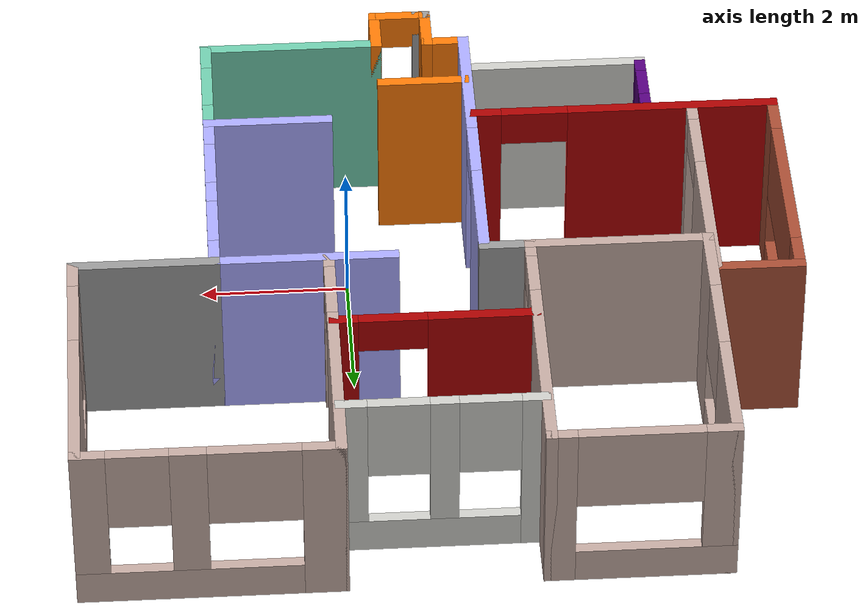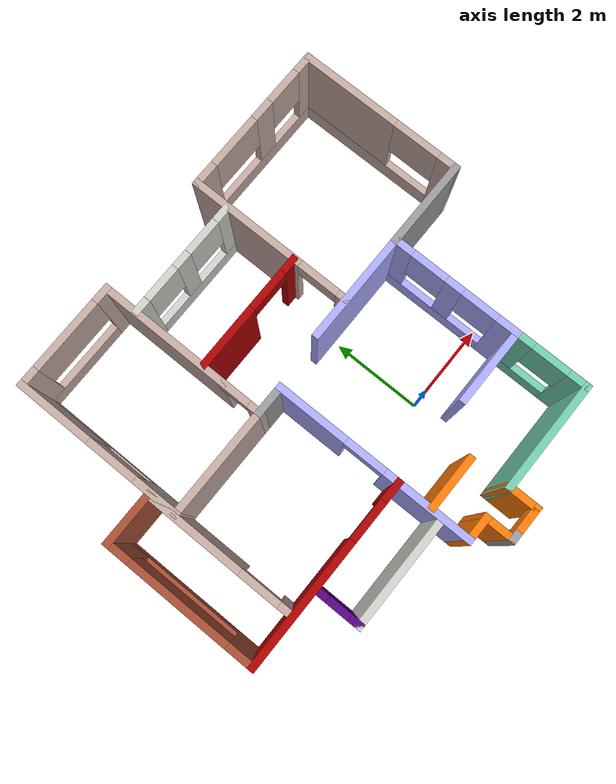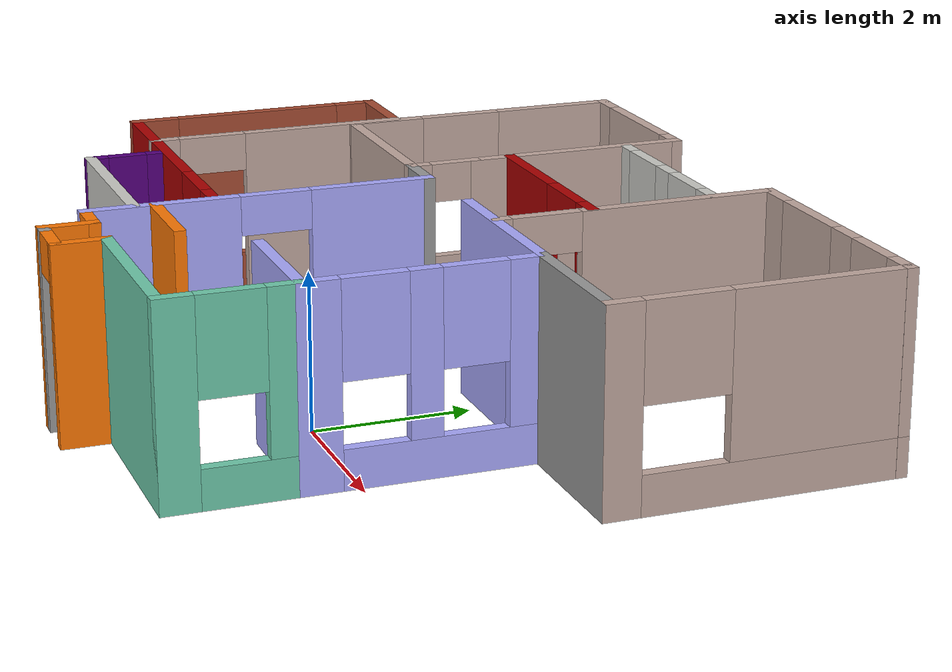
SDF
<?xml version='1.0'?>
<sdf version='1.6'>
  <model name='homeGoChaseIt'>
    <pose frame=''>-1.07958 1.48988 0 0 -0 0</pose>
    <link name='Wall_0'>
      <pose frame=''>0.249581 -4.33988 0 0 -0 0</pose>
      <visual name='Wall_0_Visual_0'>
        <pose frame=''>-0.348103 0 1.25 0 -0 0</pose>
        <geometry>
          <box>
            <size>0.053794 0.15 2.5</size>
          </box>
        </geometry>
        <material>
          <script>
            <uri>file://media/materials/scripts/gazebo.material</uri>
            <name>Gazebo/Grey</name>
          </script>
          <ambient>0.996078 0.47451 0.0196078 1</ambient>
        </material>
        <meta>
          <layer>0</layer>
        </meta>
      </visual>
      <collision name='Wall_0_Collision_0'>
        <geometry>
          <box>
            <size>0.053794 0.15 2.5</size>
          </box>
        </geometry>
        <pose frame=''>-0.348103 0 1.25 0 -0 0</pose>
      </collision>
      <visual name='Wall_0_Visual_1'>
        <pose frame=''>0.326897 0 1.25 0 -0 0</pose>
        <geometry>
          <box>
            <size>0.096206 0.15 2.5</size>
          </box>
        </geometry>
        <material>
          <script>
            <uri>file://media/materials/scripts/gazebo.material</uri>
            <name>Gazebo/Grey</name>
          </script>
          <ambient>0.996078 0.47451 0.0196078 1</ambient>
        </material>
        <meta>
          <layer>0</layer>
        </meta>
      </visual>
      <collision name='Wall_0_Collision_1'>
        <geometry>
          <box>
            <size>0.096206 0.15 2.5</size>
          </box>
        </geometry>
        <pose frame=''>0.326897 0 1.25 0 -0 0</pose>
      </collision>
      <visual name='Wall_0_Visual_2'>
        <pose frame=''>-0.021206 0 2.25 0 -0 0</pose>
        <geometry>
          <box>
            <size>0.6 0.15 0.5</size>
          </box>
        </geometry>
        <material>
          <script>
            <uri>file://media/materials/scripts/gazebo.material</uri>
            <name>Gazebo/Grey</name>
          </script>
          <ambient>0.996078 0.47451 0.0196078 1</ambient>
        </material>
        <meta>
          <layer>0</layer>
        </meta>
      </visual>
      <collision name='Wall_0_Collision_2'>
        <geometry>
          <box>
            <size>0.6 0.15 0.5</size>
          </box>
        </geometry>
        <pose frame=''>-0.021206 0 2.25 0 -0 0</pose>
      </collision>
    </link>
    <link name='Wall_1'>
      <collision name='Wall_1_Collision'>
        <geometry>
          <box>
            <size>0.75 0.15 2.5</size>
          </box>
        </geometry>
        <pose frame=''>0 0 1.25 0 -0 0</pose>
      </collision>
      <visual name='Wall_1_Visual'>
        <pose frame=''>0 0 1.25 0 -0 0</pose>
        <geometry>
          <box>
            <size>0.75 0.15 2.5</size>
          </box>
        </geometry>
        <material>
          <script>
            <uri>file://media/materials/scripts/gazebo.material</uri>
            <name>Gazebo/Grey</name>
          </script>
          <ambient>0.996078 0.47451 0.0196078 1</ambient>
        </material>
        <meta>
          <layer>0</layer>
        </meta>
      </visual>
      <pose frame=''>0.549581 -4.03988 0 0 -0 1.5708</pose>
    </link>
    <link name='Wall_12'>
      <pose frame=''>-0.650419 -1.56488 0 0 -0 1.5708</pose>
      <visual name='Wall_12_Visual_0'>
        <pose frame=''>-1.2585 0 1.25 0 -0 0</pose>
        <geometry>
          <box>
            <size>1.983 0.15 2.5</size>
          </box>
        </geometry>
        <material>
          <script>
            <uri>file://media/materials/scripts/gazebo.material</uri>
            <name>Gazebo/Grey</name>
          </script>
          <ambient>0.666667 0.666667 1 1</ambient>
        </material>
        <meta>
          <layer>0</layer>
        </meta>
      </visual>
      <collision name='Wall_12_Collision_0'>
        <geometry>
          <box>
            <size>1.983 0.15 2.5</size>
          </box>
        </geometry>
        <pose frame=''>-1.2585 0 1.25 0 -0 0</pose>
      </collision>
      <visual name='Wall_12_Visual_1'>
        <pose frame=''>1.4415 0 1.25 0 -0 0</pose>
        <geometry>
          <box>
            <size>1.617 0.15 2.5</size>
          </box>
        </geometry>
        <material>
          <script>
            <uri>file://media/materials/scripts/gazebo.material</uri>
            <name>Gazebo/Grey</name>
          </script>
          <ambient>0.666667 0.666667 1 1</ambient>
        </material>
        <meta>
          <layer>0</layer>
        </meta>
      </visual>
      <collision name='Wall_12_Collision_1'>
        <geometry>
          <box>
            <size>1.617 0.15 2.5</size>
          </box>
        </geometry>
        <pose frame=''>1.4415 0 1.25 0 -0 0</pose>
      </collision>
      <visual name='Wall_12_Visual_2'>
        <pose frame=''>0.183002 0 2.25 0 -0 0</pose>
        <geometry>
          <box>
            <size>0.9 0.15 0.5</size>
          </box>
        </geometry>
        <material>
          <script>
            <uri>file://media/materials/scripts/gazebo.material</uri>
            <name>Gazebo/Grey</name>
          </script>
          <ambient>0.666667 0.666667 1 1</ambient>
        </material>
        <meta>
          <layer>0</layer>
        </meta>
      </visual>
      <collision name='Wall_12_Collision_2'>
        <geometry>
          <box>
            <size>0.9 0.15 0.5</size>
          </box>
        </geometry>
        <pose frame=''>0.183002 0 2.25 0 -0 0</pose>
      </collision>
    </link>
    <link name='Wall_16'>
      <collision name='Wall_16_Collision'>
        <geometry>
          <box>
            <size>0.75 0.15 2.5</size>
          </box>
        </geometry>
        <pose frame=''>0 0 1.25 0 -0 0</pose>
      </collision>
      <visual name='Wall_16_Visual'>
        <pose frame=''>0 0 1.25 0 -0 0</pose>
        <geometry>
          <box>
            <size>0.75 0.15 2.5</size>
          </box>
        </geometry>
        <material>
          <script>
            <uri>file://media/materials/scripts/gazebo.material</uri>
            <name>Gazebo/Grey</name>
          </script>
          <ambient>1 1 1 1</ambient>
        </material>
        <meta>
          <layer>0</layer>
        </meta>
      </visual>
      <pose frame=''>-0.950419 0.610124 0 0 -0 3.14159</pose>
    </link>
    <link name='Wall_17'>
      <pose frame=''>-1.25042 1.03512 0 0 -0 1.5708</pose>
      <visual name='Wall_17_Visual_0'>
        <pose frame=''>-0.337999 0 1.25 0 -0 0</pose>
        <geometry>
          <box>
            <size>0.324002 0.15 2.5</size>
          </box>
        </geometry>
        <material>
          <script>
            <uri>file://media/materials/scripts/gazebo.material</uri>
            <name>Gazebo/Grey</name>
          </script>
          <ambient>0.760784 0.662745 0.627451 1</ambient>
        </material>
        <meta>
          <layer>0</layer>
        </meta>
      </visual>
      <collision name='Wall_17_Collision_0'>
        <geometry>
          <box>
            <size>0.324002 0.15 2.5</size>
          </box>
        </geometry>
        <pose frame=''>-0.337999 0 1.25 0 -0 0</pose>
      </collision>
      <visual name='Wall_17_Visual_1'>
        <pose frame=''>0.162001 0 2.25 0 -0 0</pose>
        <geometry>
          <box>
            <size>0.675998 0.15 0.5</size>
          </box>
        </geometry>
        <material>
          <script>
            <uri>file://media/materials/scripts/gazebo.material</uri>
            <name>Gazebo/Grey</name>
          </script>
          <ambient>0.760784 0.662745 0.627451 1</ambient>
        </material>
        <meta>
          <layer>0</layer>
        </meta>
      </visual>
      <collision name='Wall_17_Collision_1'>
        <geometry>
          <box>
            <size>0.675998 0.15 0.5</size>
          </box>
        </geometry>
        <pose frame=''>0.162001 0 2.25 0 -0 0</pose>
      </collision>
    </link>
    <link name='Wall_2'>
      <collision name='Wall_2_Collision'>
        <geometry>
          <box>
            <size>2.5 0.15 2.5</size>
          </box>
        </geometry>
        <pose frame=''>0 0 1.25 0 -0 0</pose>
      </collision>
      <visual name='Wall_2_Visual'>
        <pose frame=''>0 0 1.25 0 -0 0</pose>
        <geometry>
          <box>
            <size>2.5 0.15 2.5</size>
          </box>
        </geometry>
        <material>
          <script>
            <uri>file://media/materials/scripts/gazebo.material</uri>
            <name>Gazebo/Grey</name>
          </script>
          <ambient>0.435294 0.796078 0.67451 1</ambient>
        </material>
        <meta>
          <layer>0</layer>
        </meta>
      </visual>
      <pose frame=''>1.72458 -3.73988 0 0 -0 0</pose>
    </link>
    <link name='Wall_21'>
      <collision name='Wall_21_Collision'>
        <geometry>
          <box>
            <size>3 0.15 2.5</size>
          </box>
        </geometry>
        <pose frame=''>0 0 1.25 0 -0 0</pose>
      </collision>
      <visual name='Wall_21_Visual'>
        <pose frame=''>0 0 1.25 0 -0 0</pose>
        <geometry>
          <box>
            <size>3 0.15 2.5</size>
          </box>
        </geometry>
        <material>
          <script>
            <uri>file://media/materials/scripts/gazebo.material</uri>
            <name>Gazebo/Grey</name>
          </script>
          <ambient>0.760784 0.662745 0.627451 1</ambient>
        </material>
        <meta>
          <layer>0</layer>
        </meta>
      </visual>
      <pose frame=''>-1.25042 2.88512 0 0 -0 1.5708</pose>
    </link>
    <link name='Wall_22'>
      <pose frame=''>-2.42542 4.31012 0 0 -0 3.14159</pose>
      <visual name='Wall_22_Visual_0'>
        <pose frame=''>-1.0479 0 1.25 0 -0 0</pose>
        <geometry>
          <box>
            <size>0.404205 0.15 2.5</size>
          </box>
        </geometry>
        <material>
          <script>
            <uri>file://media/materials/scripts/gazebo.material</uri>
            <name>Gazebo/Grey</name>
          </script>
          <ambient>0.760784 0.662745 0.627451 1</ambient>
        </material>
        <meta>
          <layer>0</layer>
        </meta>
      </visual>
      <collision name='Wall_22_Collision_0'>
        <geometry>
          <box>
            <size>0.404205 0.15 2.5</size>
          </box>
        </geometry>
        <pose frame=''>-1.0479 0 1.25 0 -0 0</pose>
      </collision>
      <visual name='Wall_22_Visual_1'>
        <pose frame=''>0.202103 0 0.25 0 -0 0</pose>
        <geometry>
          <box>
            <size>2.09579 0.15 0.5</size>
          </box>
        </geometry>
        <material>
          <script>
            <uri>file://media/materials/scripts/gazebo.material</uri>
            <name>Gazebo/Grey</name>
          </script>
          <ambient>0.760784 0.662745 0.627451 1</ambient>
        </material>
        <meta>
          <layer>0</layer>
        </meta>
      </visual>
      <collision name='Wall_22_Collision_1'>
        <geometry>
          <box>
            <size>2.09579 0.15 0.5</size>
          </box>
        </geometry>
        <pose frame=''>0.202103 0 0.25 0 -0 0</pose>
      </collision>
      <visual name='Wall_22_Visual_2'>
        <pose frame=''>1.0161 0 1.5 0 -0 0</pose>
        <geometry>
          <box>
            <size>0.467795 0.15 2</size>
          </box>
        </geometry>
        <material>
          <script>
            <uri>file://media/materials/scripts/gazebo.material</uri>
            <name>Gazebo/Grey</name>
          </script>
          <ambient>0.760784 0.662745 0.627451 1</ambient>
        </material>
        <meta>
          <layer>0</layer>
        </meta>
      </visual>
      <collision name='Wall_22_Collision_2'>
        <geometry>
          <box>
            <size>0.467795 0.15 2</size>
          </box>
        </geometry>
        <pose frame=''>1.0161 0 1.5 0 -0 0</pose>
      </collision>
      <visual name='Wall_22_Visual_3'>
        <pose frame=''>-0.031795 0 1.9 0 -0 0</pose>
        <geometry>
          <box>
            <size>1.628 0.15 1.2</size>
          </box>
        </geometry>
        <material>
          <script>
            <uri>file://media/materials/scripts/gazebo.material</uri>
            <name>Gazebo/Grey</name>
          </script>
          <ambient>0.760784 0.662745 0.627451 1</ambient>
        </material>
        <meta>
          <layer>0</layer>
        </meta>
      </visual>
      <collision name='Wall_22_Collision_3'>
        <geometry>
          <box>
            <size>1.628 0.15 1.2</size>
          </box>
        </geometry>
        <pose frame=''>-0.031795 0 1.9 0 -0 0</pose>
      </collision>
    </link>
    <link name='Wall_26'>
      <pose frame=''>0.079375 3.58613 0 0 -0 0</pose>
      <visual name='Wall_26_Visual_0'>
        <pose frame=''>-1.1925 0 1.25 0 -0 0</pose>
        <geometry>
          <box>
            <size>0.365 0.15 2.5</size>
          </box>
        </geometry>
        <material>
          <script>
            <uri>file://media/materials/scripts/gazebo.material</uri>
            <name>Gazebo/CeilingTiled</name>
          </script>
          <ambient>1 1 1 1</ambient>
        </material>
        <meta>
          <layer>0</layer>
        </meta>
      </visual>
      <collision name='Wall_26_Collision_0'>
        <geometry>
          <box>
            <size>0.365 0.15 2.5</size>
          </box>
        </geometry>
        <pose frame=''>-1.1925 0 1.25 0 -0 0</pose>
      </collision>
      <visual name='Wall_26_Visual_1'>
        <pose frame=''>0.1825 0 0.25 0 -0 0</pose>
        <geometry>
          <box>
            <size>2.385 0.15 0.5</size>
          </box>
        </geometry>
        <material>
          <script>
            <uri>file://media/materials/scripts/gazebo.material</uri>
            <name>Gazebo/CeilingTiled</name>
          </script>
          <ambient>1 1 1 1</ambient>
        </material>
        <meta>
          <layer>0</layer>
        </meta>
      </visual>
      <collision name='Wall_26_Collision_1'>
        <geometry>
          <box>
            <size>2.385 0.15 0.5</size>
          </box>
        </geometry>
        <pose frame=''>0.1825 0 0.25 0 -0 0</pose>
      </collision>
      <visual name='Wall_26_Visual_2'>
        <pose frame=''>-0.0235 0 1.5 0 -0 0</pose>
        <geometry>
          <box>
            <size>0.373 0.15 2</size>
          </box>
        </geometry>
        <material>
          <script>
            <uri>file://media/materials/scripts/gazebo.material</uri>
            <name>Gazebo/CeilingTiled</name>
          </script>
          <ambient>1 1 1 1</ambient>
        </material>
        <meta>
          <layer>0</layer>
        </meta>
      </visual>
      <collision name='Wall_26_Collision_2'>
        <geometry>
          <box>
            <size>0.373 0.15 2</size>
          </box>
        </geometry>
        <pose frame=''>-0.0235 0 1.5 0 -0 0</pose>
      </collision>
      <visual name='Wall_26_Visual_3'>
        <pose frame=''>1.169 0 1.5 0 -0 0</pose>
        <geometry>
          <box>
            <size>0.412 0.15 2</size>
          </box>
        </geometry>
        <material>
          <script>
            <uri>file://media/materials/scripts/gazebo.material</uri>
            <name>Gazebo/CeilingTiled</name>
          </script>
          <ambient>1 1 1 1</ambient>
        </material>
        <meta>
          <layer>0</layer>
        </meta>
      </visual>
      <collision name='Wall_26_Collision_3'>
        <geometry>
          <box>
            <size>0.412 0.15 2</size>
          </box>
        </geometry>
        <pose frame=''>1.169 0 1.5 0 -0 0</pose>
      </collision>
      <visual name='Wall_26_Visual_4'>
        <pose frame=''>-0.61 0 1.9 0 -0 0</pose>
        <geometry>
          <box>
            <size>0.8 0.15 1.2</size>
          </box>
        </geometry>
        <material>
          <script>
            <uri>file://media/materials/scripts/gazebo.material</uri>
            <name>Gazebo/CeilingTiled</name>
          </script>
          <ambient>1 1 1 1</ambient>
        </material>
        <meta>
          <layer>0</layer>
        </meta>
      </visual>
      <collision name='Wall_26_Collision_4'>
        <geometry>
          <box>
            <size>0.8 0.15 1.2</size>
          </box>
        </geometry>
        <pose frame=''>-0.61 0 1.9 0 -0 0</pose>
      </collision>
      <visual name='Wall_26_Visual_5'>
        <pose frame=''>0.563 0 1.9 0 -0 0</pose>
        <geometry>
          <box>
            <size>0.8 0.15 1.2</size>
          </box>
        </geometry>
        <material>
          <script>
            <uri>file://media/materials/scripts/gazebo.material</uri>
            <name>Gazebo/CeilingTiled</name>
          </script>
          <ambient>1 1 1 1</ambient>
        </material>
        <meta>
          <layer>0</layer>
        </meta>
      </visual>
      <collision name='Wall_26_Collision_5'>
        <geometry>
          <box>
            <size>0.8 0.15 1.2</size>
          </box>
        </geometry>
        <pose frame=''>0.563 0 1.9 0 -0 0</pose>
      </collision>
    </link>
    <link name='Wall_3'>
      <pose frame=''>2.89958 -2.93988 0 0 -0 1.5708</pose>
      <visual name='Wall_3_Visual_0'>
        <pose frame=''>-0.634749 0 1.25 0 -0 0</pose>
        <geometry>
          <box>
            <size>0.480502 0.15 2.5</size>
          </box>
        </geometry>
        <material>
          <script>
            <uri>file://media/materials/scripts/gazebo.material</uri>
            <name>Gazebo/Grey</name>
          </script>
          <ambient>0.435294 0.796078 0.67451 1</ambient>
        </material>
        <meta>
          <layer>0</layer>
        </meta>
      </visual>
      <collision name='Wall_3_Collision_0'>
        <geometry>
          <box>
            <size>0.480502 0.15 2.5</size>
          </box>
        </geometry>
        <pose frame=''>-0.634749 0 1.25 0 -0 0</pose>
      </collision>
      <visual name='Wall_3_Visual_1'>
        <pose frame=''>0.240251 0 0.25 0 -0 0</pose>
        <geometry>
          <box>
            <size>1.2695 0.15 0.5</size>
          </box>
        </geometry>
        <material>
          <script>
            <uri>file://media/materials/scripts/gazebo.material</uri>
            <name>Gazebo/Grey</name>
          </script>
          <ambient>0.435294 0.796078 0.67451 1</ambient>
        </material>
        <meta>
          <layer>0</layer>
        </meta>
      </visual>
      <collision name='Wall_3_Collision_1'>
        <geometry>
          <box>
            <size>1.2695 0.15 0.5</size>
          </box>
        </geometry>
        <pose frame=''>0.240251 0 0.25 0 -0 0</pose>
      </collision>
      <visual name='Wall_3_Visual_2'>
        <pose frame=''>0.640251 0 1.5 0 -0 0</pose>
        <geometry>
          <box>
            <size>0.469498 0.15 2</size>
          </box>
        </geometry>
        <material>
          <script>
            <uri>file://media/materials/scripts/gazebo.material</uri>
            <name>Gazebo/Grey</name>
          </script>
          <ambient>0.435294 0.796078 0.67451 1</ambient>
        </material>
        <meta>
          <layer>0</layer>
        </meta>
      </visual>
      <collision name='Wall_3_Collision_2'>
        <geometry>
          <box>
            <size>0.469498 0.15 2</size>
          </box>
        </geometry>
        <pose frame=''>0.640251 0 1.5 0 -0 0</pose>
      </collision>
      <visual name='Wall_3_Visual_3'>
        <pose frame=''>0.005502 0 1.9 0 -0 0</pose>
        <geometry>
          <box>
            <size>0.8 0.15 1.2</size>
          </box>
        </geometry>
        <material>
          <script>
            <uri>file://media/materials/scripts/gazebo.material</uri>
            <name>Gazebo/Grey</name>
          </script>
          <ambient>0.435294 0.796078 0.67451 1</ambient>
        </material>
        <meta>
          <layer>0</layer>
        </meta>
      </visual>
      <collision name='Wall_3_Collision_3'>
        <geometry>
          <box>
            <size>0.8 0.15 1.2</size>
          </box>
        </geometry>
        <pose frame=''>0.005502 0 1.9 0 -0 0</pose>
      </collision>
    </link>
    <link name='Wall_36'>
      <collision name='Wall_36_Collision'>
        <geometry>
          <box>
            <size>0.25 0.15 2.5</size>
          </box>
        </geometry>
        <pose frame=''>0 0 1.25 0 -0 0</pose>
      </collision>
      <visual name='Wall_36_Visual'>
        <pose frame=''>0 0 1.25 0 -0 0</pose>
        <geometry>
          <box>
            <size>0.25 0.15 2.5</size>
          </box>
        </geometry>
        <material>
          <script>
            <uri>file://media/materials/scripts/gazebo.material</uri>
            <name>Gazebo/Grey</name>
          </script>
          <ambient>1 1 1 1</ambient>
        </material>
        <meta>
          <layer>0</layer>
        </meta>
      </visual>
      <pose frame=''>-0.100419 -4.33988 0 0 -0 3.14159</pose>
    </link>
    <link name='Wall_37'>
      <collision name='Wall_37_Collision'>
        <geometry>
          <box>
            <size>0.75 0.15 2.5</size>
          </box>
        </geometry>
        <pose frame=''>0 0 1.25 0 -0 0</pose>
      </collision>
      <visual name='Wall_37_Visual'>
        <pose frame=''>0 0 1.25 0 -0 0</pose>
        <geometry>
          <box>
            <size>0.75 0.15 2.5</size>
          </box>
        </geometry>
        <material>
          <script>
            <uri>file://media/materials/scripts/gazebo.material</uri>
            <name>Gazebo/Grey</name>
          </script>
          <ambient>0.996078 0.47451 0.0196078 1</ambient>
        </material>
        <meta>
          <layer>0</layer>
        </meta>
      </visual>
      <pose frame=''>-0.150419 -4.03988 0 0 -0 1.5708</pose>
    </link>
    <link name='Wall_38'>
      <collision name='Wall_38_Collision'>
        <geometry>
          <box>
            <size>0.65 0.15 2.5</size>
          </box>
        </geometry>
        <pose frame=''>0 0 1.25 0 -0 0</pose>
      </collision>
      <visual name='Wall_38_Visual'>
        <pose frame=''>0 0 1.25 0 -0 0</pose>
        <geometry>
          <box>
            <size>0.65 0.15 2.5</size>
          </box>
        </geometry>
        <material>
          <script>
            <uri>file://media/materials/scripts/gazebo.material</uri>
            <name>Gazebo/Grey</name>
          </script>
          <ambient>0.996078 0.47451 0.0196078 1</ambient>
        </material>
        <meta>
          <layer>0</layer>
        </meta>
      </visual>
      <pose frame=''>-0.400419 -3.73988 0 0 -0 3.14159</pose>
    </link>
    <link name='Wall_40'>
      <collision name='Wall_40_Collision'>
        <geometry>
          <box>
            <size>2.5 0.15 2.5</size>
          </box>
        </geometry>
        <pose frame=''>0 0 1.25 0 -0 0</pose>
      </collision>
      <visual name='Wall_40_Visual'>
        <pose frame=''>0 0 1.25 0 -0 0</pose>
        <geometry>
          <box>
            <size>2.5 0.15 2.5</size>
          </box>
        </geometry>
        <material>
          <script>
            <uri>file://media/materials/scripts/gazebo.material</uri>
            <name>Gazebo/Grey</name>
          </script>
          <ambient>0.760784 0.662745 0.627451 1</ambient>
        </material>
        <meta>
          <layer>0</layer>
        </meta>
      </visual>
      <pose frame=''>-2.42542 0.610124 0 0 -0 3.14159</pose>
    </link>
    <link name='Wall_41'>
      <pose frame=''>-3.60042 2.46012 0 0 -0 1.5708</pose>
      <visual name='Wall_41_Visual_0'>
        <pose frame=''>-1.40162 0 1.25 0 -0 0</pose>
        <geometry>
          <box>
            <size>1.04675 0.15 2.5</size>
          </box>
        </geometry>
        <material>
          <script>
            <uri>file://media/materials/scripts/gazebo.material</uri>
            <name>Gazebo/Grey</name>
          </script>
          <ambient>0.760784 0.662745 0.627451 1</ambient>
        </material>
        <meta>
          <layer>0</layer>
        </meta>
      </visual>
      <collision name='Wall_41_Collision_0'>
        <geometry>
          <box>
            <size>1.04675 0.15 2.5</size>
          </box>
        </geometry>
        <pose frame=''>-1.40162 0 1.25 0 -0 0</pose>
      </collision>
      <visual name='Wall_41_Visual_1'>
        <pose frame=''>0.523376 0 0.25 0 -0 0</pose>
        <geometry>
          <box>
            <size>2.80325 0.15 0.5</size>
          </box>
        </geometry>
        <material>
          <script>
            <uri>file://media/materials/scripts/gazebo.material</uri>
            <name>Gazebo/Grey</name>
          </script>
          <ambient>0.760784 0.662745 0.627451 1</ambient>
        </material>
        <meta>
          <layer>0</layer>
        </meta>
      </visual>
      <collision name='Wall_41_Collision_1'>
        <geometry>
          <box>
            <size>2.80325 0.15 0.5</size>
          </box>
        </geometry>
        <pose frame=''>0.523376 0 0.25 0 -0 0</pose>
      </collision>
      <visual name='Wall_41_Visual_2'>
        <pose frame=''>1.07863 0 1.5 0 -0 0</pose>
        <geometry>
          <box>
            <size>1.69275 0.15 2</size>
          </box>
        </geometry>
        <material>
          <script>
            <uri>file://media/materials/scripts/gazebo.material</uri>
            <name>Gazebo/Grey</name>
          </script>
          <ambient>0.760784 0.662745 0.627451 1</ambient>
        </material>
        <meta>
          <layer>0</layer>
        </meta>
      </visual>
      <collision name='Wall_41_Collision_2'>
        <geometry>
          <box>
            <size>1.69275 0.15 2</size>
          </box>
        </geometry>
        <pose frame=''>1.07863 0 1.5 0 -0 0</pose>
      </collision>
      <visual name='Wall_41_Visual_3'>
        <pose frame=''>-0.322998 0 1.9 0 -0 0</pose>
        <geometry>
          <box>
            <size>1.1105 0.15 1.2</size>
          </box>
        </geometry>
        <material>
          <script>
            <uri>file://media/materials/scripts/gazebo.material</uri>
            <name>Gazebo/Grey</name>
          </script>
          <ambient>0.760784 0.662745 0.627451 1</ambient>
        </material>
        <meta>
          <layer>0</layer>
        </meta>
      </visual>
      <collision name='Wall_41_Collision_3'>
        <geometry>
          <box>
            <size>1.1105 0.15 1.2</size>
          </box>
        </geometry>
        <pose frame=''>-0.322998 0 1.9 0 -0 0</pose>
      </collision>
    </link>
    <link name='Wall_43'>
      <collision name='Wall_43_Collision'>
        <geometry>
          <box>
            <size>2 0.15 2.5</size>
          </box>
        </geometry>
        <pose frame=''>0 0 1.25 0 -0 0</pose>
      </collision>
      <visual name='Wall_43_Visual'>
        <pose frame=''>0 0 1.25 0 -0 0</pose>
        <geometry>
          <box>
            <size>2 0.15 2.5</size>
          </box>
        </geometry>
        <material>
          <script>
            <uri>file://media/materials/scripts/gazebo.material</uri>
            <name>Gazebo/Grey</name>
          </script>
          <ambient>1 1 1 1</ambient>
        </material>
        <meta>
          <layer>0</layer>
        </meta>
      </visual>
      <pose frame=''>3.82458 0.710124 0 0 -0 0</pose>
    </link>
    <link name='Wall_44'>
      <pose frame=''>4.74958 2.51012 0 0 -0 1.5708</pose>
      <visual name='Wall_44_Visual_0'>
        <pose frame=''>-1.64312 0 1.25 0 -0 0</pose>
        <geometry>
          <box>
            <size>0.463752 0.15 2.5</size>
          </box>
        </geometry>
        <material>
          <script>
            <uri>file://media/materials/scripts/gazebo.material</uri>
            <name>Gazebo/Grey</name>
          </script>
          <ambient>0.760784 0.662745 0.627451 1</ambient>
        </material>
        <meta>
          <layer>0</layer>
        </meta>
      </visual>
      <collision name='Wall_44_Collision_0'>
        <geometry>
          <box>
            <size>0.463752 0.15 2.5</size>
          </box>
        </geometry>
        <pose frame=''>-1.64312 0 1.25 0 -0 0</pose>
      </collision>
      <visual name='Wall_44_Visual_1'>
        <pose frame=''>0.231876 0 0.25 0 -0 0</pose>
        <geometry>
          <box>
            <size>3.28625 0.15 0.5</size>
          </box>
        </geometry>
        <material>
          <script>
            <uri>file://media/materials/scripts/gazebo.material</uri>
            <name>Gazebo/Grey</name>
          </script>
          <ambient>0.760784 0.662745 0.627451 1</ambient>
        </material>
        <meta>
          <layer>0</layer>
        </meta>
      </visual>
      <collision name='Wall_44_Collision_1'>
        <geometry>
          <box>
            <size>3.28625 0.15 0.5</size>
          </box>
        </geometry>
        <pose frame=''>0.231876 0 0.25 0 -0 0</pose>
      </collision>
      <visual name='Wall_44_Visual_2'>
        <pose frame=''>0.761251 0 1.5 0 -0 0</pose>
        <geometry>
          <box>
            <size>2.2275 0.15 2</size>
          </box>
        </geometry>
        <material>
          <script>
            <uri>file://media/materials/scripts/gazebo.material</uri>
            <name>Gazebo/Grey</name>
          </script>
          <ambient>0.760784 0.662745 0.627451 1</ambient>
        </material>
        <meta>
          <layer>0</layer>
        </meta>
      </visual>
      <collision name='Wall_44_Collision_2'>
        <geometry>
          <box>
            <size>2.2275 0.15 2</size>
          </box>
        </geometry>
        <pose frame=''>0.761251 0 1.5 0 -0 0</pose>
      </collision>
      <visual name='Wall_44_Visual_3'>
        <pose frame=''>-0.881873 0 1.9 0 -0 0</pose>
        <geometry>
          <box>
            <size>1.05875 0.15 1.2</size>
          </box>
        </geometry>
        <material>
          <script>
            <uri>file://media/materials/scripts/gazebo.material</uri>
            <name>Gazebo/Grey</name>
          </script>
          <ambient>0.760784 0.662745 0.627451 1</ambient>
        </material>
        <meta>
          <layer>0</layer>
        </meta>
      </visual>
      <collision name='Wall_44_Collision_3'>
        <geometry>
          <box>
            <size>1.05875 0.15 1.2</size>
          </box>
        </geometry>
        <pose frame=''>-0.881873 0 1.9 0 -0 0</pose>
      </collision>
    </link>
    <link name='Wall_46'>
      <pose frame=''>1.40138 2.53988 0 0 -0 1.5708</pose>
      <visual name='Wall_46_Visual_0'>
        <pose frame=''>-1.752 0 1.25 0 -0 0</pose>
        <geometry>
          <box>
            <size>0.246 0.15 2.5</size>
          </box>
        </geometry>
        <material>
          <script>
            <uri>file://media/materials/scripts/gazebo.material</uri>
            <name>Gazebo/Grey</name>
          </script>
          <ambient>0.760784 0.662745 0.627451 1</ambient>
        </material>
        <meta>
          <layer>0</layer>
        </meta>
      </visual>
      <collision name='Wall_46_Collision_0'>
        <geometry>
          <box>
            <size>0.246 0.15 2.5</size>
          </box>
        </geometry>
        <pose frame=''>-1.752 0 1.25 0 -0 0</pose>
      </collision>
      <visual name='Wall_46_Visual_1'>
        <pose frame=''>0.573 0 1.25 0 -0 0</pose>
        <geometry>
          <box>
            <size>2.604 0.15 2.5</size>
          </box>
        </geometry>
        <material>
          <script>
            <uri>file://media/materials/scripts/gazebo.material</uri>
            <name>Gazebo/Grey</name>
          </script>
          <ambient>0.760784 0.662745 0.627451 1</ambient>
        </material>
        <meta>
          <layer>0</layer>
        </meta>
      </visual>
      <collision name='Wall_46_Collision_1'>
        <geometry>
          <box>
            <size>2.604 0.15 2.5</size>
          </box>
        </geometry>
        <pose frame=''>0.573 0 1.25 0 -0 0</pose>
      </collision>
      <visual name='Wall_46_Visual_2'>
        <pose frame=''>-1.179 0 2.25 0 -0 0</pose>
        <geometry>
          <box>
            <size>0.9 0.15 0.5</size>
          </box>
        </geometry>
        <material>
          <script>
            <uri>file://media/materials/scripts/gazebo.material</uri>
            <name>Gazebo/Grey</name>
          </script>
          <ambient>0.760784 0.662745 0.627451 1</ambient>
        </material>
        <meta>
          <layer>0</layer>
        </meta>
      </visual>
      <collision name='Wall_46_Collision_2'>
        <geometry>
          <box>
            <size>0.9 0.15 0.5</size>
          </box>
        </geometry>
        <pose frame=''>-1.179 0 2.25 0 -0 0</pose>
      </collision>
    </link>
    <link name='Wall_47'>
      <pose frame=''>3.07638 4.33988 0 0 -0 0</pose>
      <visual name='Wall_47_Visual_0'>
        <pose frame=''>-1.464 0 1.25 0 -0 0</pose>
        <geometry>
          <box>
            <size>0.572 0.15 2.5</size>
          </box>
        </geometry>
        <material>
          <script>
            <uri>file://media/materials/scripts/gazebo.material</uri>
            <name>Gazebo/Grey</name>
          </script>
          <ambient>0.760784 0.662745 0.627451 1</ambient>
        </material>
        <meta>
          <layer>0</layer>
        </meta>
      </visual>
      <collision name='Wall_47_Collision_0'>
        <geometry>
          <box>
            <size>0.572 0.15 2.5</size>
          </box>
        </geometry>
        <pose frame=''>-1.464 0 1.25 0 -0 0</pose>
      </collision>
      <visual name='Wall_47_Visual_1'>
        <pose frame=''>0.286 0 0.25 0 -0 0</pose>
        <geometry>
          <box>
            <size>2.928 0.15 0.5</size>
          </box>
        </geometry>
        <material>
          <script>
            <uri>file://media/materials/scripts/gazebo.material</uri>
            <name>Gazebo/Grey</name>
          </script>
          <ambient>0.760784 0.662745 0.627451 1</ambient>
        </material>
        <meta>
          <layer>0</layer>
        </meta>
      </visual>
      <collision name='Wall_47_Collision_1'>
        <geometry>
          <box>
            <size>2.928 0.15 0.5</size>
          </box>
        </geometry>
        <pose frame=''>0.286 0 0.25 0 -0 0</pose>
      </collision>
      <visual name='Wall_47_Visual_2'>
        <pose frame=''>0.257 0 1.5 0 -0 0</pose>
        <geometry>
          <box>
            <size>0.4765 0.15 2</size>
          </box>
        </geometry>
        <material>
          <script>
            <uri>file://media/materials/scripts/gazebo.material</uri>
            <name>Gazebo/Grey</name>
          </script>
          <ambient>0.760784 0.662745 0.627451 1</ambient>
        </material>
        <meta>
          <layer>0</layer>
        </meta>
      </visual>
      <collision name='Wall_47_Collision_2'>
        <geometry>
          <box>
            <size>0.4765 0.15 2</size>
          </box>
        </geometry>
        <pose frame=''>0.257 0 1.5 0 -0 0</pose>
      </collision>
      <visual name='Wall_47_Visual_3'>
        <pose frame=''>1.52262 0 1.5 0 -0 0</pose>
        <geometry>
          <box>
            <size>0.45475 0.15 2</size>
          </box>
        </geometry>
        <material>
          <script>
            <uri>file://media/materials/scripts/gazebo.material</uri>
            <name>Gazebo/Grey</name>
          </script>
          <ambient>0.760784 0.662745 0.627451 1</ambient>
        </material>
        <meta>
          <layer>0</layer>
        </meta>
      </visual>
      <collision name='Wall_47_Collision_3'>
        <geometry>
          <box>
            <size>0.45475 0.15 2</size>
          </box>
        </geometry>
        <pose frame=''>1.52262 0 1.5 0 -0 0</pose>
      </collision>
      <visual name='Wall_47_Visual_4'>
        <pose frame=''>-0.579625 0 1.9 0 -0 0</pose>
        <geometry>
          <box>
            <size>1.19675 0.15 1.2</size>
          </box>
        </geometry>
        <material>
          <script>
            <uri>file://media/materials/scripts/gazebo.material</uri>
            <name>Gazebo/Grey</name>
          </script>
          <ambient>0.760784 0.662745 0.627451 1</ambient>
        </material>
        <meta>
          <layer>0</layer>
        </meta>
      </visual>
      <collision name='Wall_47_Collision_4'>
        <geometry>
          <box>
            <size>1.19675 0.15 1.2</size>
          </box>
        </geometry>
        <pose frame=''>-0.579625 0 1.9 0 -0 0</pose>
      </collision>
      <visual name='Wall_47_Visual_5'>
        <pose frame=''>0.89525 0 1.9 0 -0 0</pose>
        <geometry>
          <box>
            <size>0.8 0.15 1.2</size>
          </box>
        </geometry>
        <material>
          <script>
            <uri>file://media/materials/scripts/gazebo.material</uri>
            <name>Gazebo/Grey</name>
          </script>
          <ambient>0.760784 0.662745 0.627451 1</ambient>
        </material>
        <meta>
          <layer>0</layer>
        </meta>
      </visual>
      <collision name='Wall_47_Collision_5'>
        <geometry>
          <box>
            <size>0.8 0.15 1.2</size>
          </box>
        </geometry>
        <pose frame=''>0.89525 0 1.9 0 -0 0</pose>
      </collision>
    </link>
    <link name='Wall_49'>
      <pose frame=''>-2.70138 -2.14087 0 0 -0 3.14159</pose>
      <visual name='Wall_49_Visual_0'>
        <pose frame=''>-1.88125 0 1.25 0 -0 0</pose>
        <geometry>
          <box>
            <size>0.4875 0.15 2.5</size>
          </box>
        </geometry>
        <material>
          <script>
            <uri>file://media/materials/scripts/gazebo.material</uri>
            <name>Gazebo/Grey</name>
          </script>
          <ambient>0.666667 0 0 1</ambient>
        </material>
        <meta>
          <layer>0</layer>
        </meta>
      </visual>
      <collision name='Wall_49_Collision_0'>
        <geometry>
          <box>
            <size>0.4875 0.15 2.5</size>
          </box>
        </geometry>
        <pose frame=''>-1.88125 0 1.25 0 -0 0</pose>
      </collision>
      <visual name='Wall_49_Visual_1'>
        <pose frame=''>0.69375 0 1.25 0 -0 0</pose>
        <geometry>
          <box>
            <size>2.8625 0.15 2.5</size>
          </box>
        </geometry>
        <material>
          <script>
            <uri>file://media/materials/scripts/gazebo.material</uri>
            <name>Gazebo/Grey</name>
          </script>
          <ambient>0.666667 0 0 1</ambient>
        </material>
        <meta>
          <layer>0</layer>
        </meta>
      </visual>
      <collision name='Wall_49_Collision_1'>
        <geometry>
          <box>
            <size>2.8625 0.15 2.5</size>
          </box>
        </geometry>
        <pose frame=''>0.69375 0 1.25 0 -0 0</pose>
      </collision>
      <visual name='Wall_49_Visual_2'>
        <pose frame=''>-1.1875 0 2.25 0 -0 0</pose>
        <geometry>
          <box>
            <size>0.9 0.15 0.5</size>
          </box>
        </geometry>
        <material>
          <script>
            <uri>file://media/materials/scripts/gazebo.material</uri>
            <name>Gazebo/Grey</name>
          </script>
          <ambient>0.666667 0 0 1</ambient>
        </material>
        <meta>
          <layer>0</layer>
        </meta>
      </visual>
      <collision name='Wall_49_Collision_2'>
        <geometry>
          <box>
            <size>0.9 0.15 0.5</size>
          </box>
        </geometry>
        <pose frame=''>-1.1875 0 2.25 0 -0 0</pose>
      </collision>
    </link>
    <link name='Wall_5'>
      <collision name='Wall_5_Collision'>
        <geometry>
          <box>
            <size>1.75 0.15 2.5</size>
          </box>
        </geometry>
        <pose frame=''>0 0 1.25 0 -0 0</pose>
      </collision>
      <visual name='Wall_5_Visual'>
        <pose frame=''>0 0 1.25 0 -0 0</pose>
        <geometry>
          <box>
            <size>1.75 0.15 2.5</size>
          </box>
        </geometry>
        <material>
          <script>
            <uri>file://media/materials/scripts/gazebo.material</uri>
            <name>Gazebo/Grey</name>
          </script>
          <ambient>0.666667 0.666667 1 1</ambient>
        </material>
        <meta>
          <layer>0</layer>
        </meta>
      </visual>
      <pose frame=''>2.09958 -2.13988 0 0 -0 3.14159</pose>
    </link>
    <link name='Wall_50'>
      <pose frame=''>-4.75138 -0.465874 0 0 -0 1.5708</pose>
      <visual name='Wall_50_Visual_0'>
        <pose frame=''>-1.42519 0 1.25 0 -0 0</pose>
        <geometry>
          <box>
            <size>0.649625 0.15 2.5</size>
          </box>
        </geometry>
        <material>
          <script>
            <uri>file://media/materials/scripts/gazebo.material</uri>
            <name>Gazebo/Bricks</name>
          </script>
          <ambient>0.435294 0.796078 0.67451 1</ambient>
        </material>
        <meta>
          <layer>0</layer>
        </meta>
      </visual>
      <collision name='Wall_50_Collision_0'>
        <geometry>
          <box>
            <size>0.649625 0.15 2.5</size>
          </box>
        </geometry>
        <pose frame=''>-1.42519 0 1.25 0 -0 0</pose>
      </collision>
      <visual name='Wall_50_Visual_1'>
        <pose frame=''>0.324812 0 0.25 0 -0 0</pose>
        <geometry>
          <box>
            <size>2.85038 0.15 0.5</size>
          </box>
        </geometry>
        <material>
          <script>
            <uri>file://media/materials/scripts/gazebo.material</uri>
            <name>Gazebo/Bricks</name>
          </script>
          <ambient>0.435294 0.796078 0.67451 1</ambient>
        </material>
        <meta>
          <layer>0</layer>
        </meta>
      </visual>
      <collision name='Wall_50_Collision_1'>
        <geometry>
          <box>
            <size>2.85038 0.15 0.5</size>
          </box>
        </geometry>
        <pose frame=''>0.324812 0 0.25 0 -0 0</pose>
      </collision>
      <visual name='Wall_50_Visual_2'>
        <pose frame=''>1.45794 0 1.5 0 -0 0</pose>
        <geometry>
          <box>
            <size>0.584125 0.15 2</size>
          </box>
        </geometry>
        <material>
          <script>
            <uri>file://media/materials/scripts/gazebo.material</uri>
            <name>Gazebo/Bricks</name>
          </script>
          <ambient>0.435294 0.796078 0.67451 1</ambient>
        </material>
        <meta>
          <layer>0</layer>
        </meta>
      </visual>
      <collision name='Wall_50_Collision_2'>
        <geometry>
          <box>
            <size>0.584125 0.15 2</size>
          </box>
        </geometry>
        <pose frame=''>1.45794 0 1.5 0 -0 0</pose>
      </collision>
      <visual name='Wall_50_Visual_3'>
        <pose frame=''>0.03275 0 1.9 0 -0 0</pose>
        <geometry>
          <box>
            <size>2.26625 0.15 1.2</size>
          </box>
        </geometry>
        <material>
          <script>
            <uri>file://media/materials/scripts/gazebo.material</uri>
            <name>Gazebo/Bricks</name>
          </script>
          <ambient>0.435294 0.796078 0.67451 1</ambient>
        </material>
        <meta>
          <layer>0</layer>
        </meta>
      </visual>
      <collision name='Wall_50_Collision_3'>
        <geometry>
          <box>
            <size>2.26625 0.15 1.2</size>
          </box>
        </geometry>
        <pose frame=''>0.03275 0 1.9 0 -0 0</pose>
      </collision>
    </link>
    <link name='Wall_51'>
      <collision name='Wall_51_Collision'>
        <geometry>
          <box>
            <size>1.25 0.15 2.5</size>
          </box>
        </geometry>
        <pose frame=''>0 0 1.25 0 -0 0</pose>
      </collision>
      <visual name='Wall_51_Visual'>
        <pose frame=''>0 0 1.25 0 -0 0</pose>
        <geometry>
          <box>
            <size>1.25 0.15 2.5</size>
          </box>
        </geometry>
        <material>
          <script>
            <uri>file://media/materials/scripts/gazebo.material</uri>
            <name>Gazebo/Bricks</name>
          </script>
          <ambient>0.435294 0.796078 0.67451 1</ambient>
        </material>
        <meta>
          <layer>0</layer>
        </meta>
      </visual>
      <pose frame=''>-4.20137 1.20913 0 0 -0 0</pose>
    </link>
    <link name='Wall_52'>
      <pose frame=''>-3.65137 -0.465874 0 0 0 -1.5708</pose>
      <visual name='Wall_52_Visual_0'>
        <pose frame=''>-0.642 0 1.25 0 -0 0</pose>
        <geometry>
          <box>
            <size>2.216 0.15 2.5</size>
          </box>
        </geometry>
        <material>
          <script>
            <uri>file://media/materials/scripts/gazebo.material</uri>
            <name>Gazebo/Grey</name>
          </script>
          <ambient>0.760784 0.662745 0.627451 1</ambient>
        </material>
        <meta>
          <layer>0</layer>
        </meta>
      </visual>
      <collision name='Wall_52_Collision_0'>
        <geometry>
          <box>
            <size>2.216 0.15 2.5</size>
          </box>
        </geometry>
        <pose frame=''>-0.642 0 1.25 0 -0 0</pose>
      </collision>
      <visual name='Wall_52_Visual_1'>
        <pose frame=''>1.558 0 1.25 0 -0 0</pose>
        <geometry>
          <box>
            <size>0.384 0.15 2.5</size>
          </box>
        </geometry>
        <material>
          <script>
            <uri>file://media/materials/scripts/gazebo.material</uri>
            <name>Gazebo/Grey</name>
          </script>
          <ambient>0.760784 0.662745 0.627451 1</ambient>
        </material>
        <meta>
          <layer>0</layer>
        </meta>
      </visual>
      <collision name='Wall_52_Collision_1'>
        <geometry>
          <box>
            <size>0.384 0.15 2.5</size>
          </box>
        </geometry>
        <pose frame=''>1.558 0 1.25 0 -0 0</pose>
      </collision>
      <visual name='Wall_52_Visual_2'>
        <pose frame=''>0.916 0 2.25 0 -0 0</pose>
        <geometry>
          <box>
            <size>0.9 0.15 0.5</size>
          </box>
        </geometry>
        <material>
          <script>
            <uri>file://media/materials/scripts/gazebo.material</uri>
            <name>Gazebo/Grey</name>
          </script>
          <ambient>0.760784 0.662745 0.627451 1</ambient>
        </material>
        <meta>
          <layer>0</layer>
        </meta>
      </visual>
      <collision name='Wall_52_Collision_2'>
        <geometry>
          <box>
            <size>0.9 0.15 0.5</size>
          </box>
        </geometry>
        <pose frame=''>0.916 0 2.25 0 -0 0</pose>
      </collision>
    </link>
    <link name='Wall_55'>
      <pose frame=''>0.079375 1.96463 0 0 -0 0</pose>
      <visual name='Wall_55_Visual_0'>
        <pose frame=''>-0.639625 0 1.25 0 -0 0</pose>
        <geometry>
          <box>
            <size>1.47075 0.15 2.5</size>
          </box>
        </geometry>
        <material>
          <script>
            <uri>file://media/materials/scripts/gazebo.material</uri>
            <name>Gazebo/Grey</name>
          </script>
          <ambient>0.666667 0 0 1</ambient>
        </material>
        <meta>
          <layer>0</layer>
        </meta>
      </visual>
      <collision name='Wall_55_Collision_0'>
        <geometry>
          <box>
            <size>1.47075 0.15 2.5</size>
          </box>
        </geometry>
        <pose frame=''>-0.639625 0 1.25 0 -0 0</pose>
      </collision>
      <visual name='Wall_55_Visual_1'>
        <pose frame=''>1.18538 0 1.25 0 -0 0</pose>
        <geometry>
          <box>
            <size>0.37925 0.15 2.5</size>
          </box>
        </geometry>
        <material>
          <script>
            <uri>file://media/materials/scripts/gazebo.material</uri>
            <name>Gazebo/Grey</name>
          </script>
          <ambient>0.666667 0 0 1</ambient>
        </material>
        <meta>
          <layer>0</layer>
        </meta>
      </visual>
      <collision name='Wall_55_Collision_1'>
        <geometry>
          <box>
            <size>0.37925 0.15 2.5</size>
          </box>
        </geometry>
        <pose frame=''>1.18538 0 1.25 0 -0 0</pose>
      </collision>
      <visual name='Wall_55_Visual_2'>
        <pose frame=''>0.54575 0 2.25 0 -0 0</pose>
        <geometry>
          <box>
            <size>0.9 0.15 0.5</size>
          </box>
        </geometry>
        <material>
          <script>
            <uri>file://media/materials/scripts/gazebo.material</uri>
            <name>Gazebo/Grey</name>
          </script>
          <ambient>0.666667 0 0 1</ambient>
        </material>
        <meta>
          <layer>0</layer>
        </meta>
      </visual>
      <collision name='Wall_55_Collision_2'>
        <geometry>
          <box>
            <size>0.9 0.15 0.5</size>
          </box>
        </geometry>
        <pose frame=''>0.54575 0 2.25 0 -0 0</pose>
      </collision>
    </link>
    <link name='Wall_57'>
      <collision name='Wall_57_Collision'>
        <geometry>
          <box>
            <size>2.5 0.15 2.5</size>
          </box>
        </geometry>
        <pose frame=''>0 0 1.25 0 -0 0</pose>
      </collision>
      <visual name='Wall_57_Visual'>
        <pose frame=''>0 0 1.25 0 -0 0</pose>
        <geometry>
          <box>
            <size>2.5 0.15 2.5</size>
          </box>
        </geometry>
        <material>
          <script>
            <uri>file://media/materials/scripts/gazebo.material</uri>
            <name>Gazebo/CeilingTiled</name>
          </script>
          <ambient>1 1 1 1</ambient>
        </material>
        <meta>
          <layer>0</layer>
        </meta>
      </visual>
      <pose frame=''>-1.86088 -3.14137 0 0 -0 3.14159</pose>
    </link>
    <link name='Wall_58'>
      <pose frame=''>-3.03587 -2.71637 0 0 -0 1.5708</pose>
      <visual name='Wall_58_Visual_0'>
        <pose frame=''>-0.354625 0 1.25 0 -0 0</pose>
        <geometry>
          <box>
            <size>0.29075 0.15 2.5</size>
          </box>
        </geometry>
        <material>
          <script>
            <uri>file://media/materials/scripts/gazebo.material</uri>
            <name>Gazebo/Grey</name>
          </script>
          <ambient>0.333333 0 0.498039 1</ambient>
        </material>
        <meta>
          <layer>0</layer>
        </meta>
      </visual>
      <collision name='Wall_58_Collision_0'>
        <geometry>
          <box>
            <size>0.29075 0.15 2.5</size>
          </box>
        </geometry>
        <pose frame=''>-0.354625 0 1.25 0 -0 0</pose>
      </collision>
      <visual name='Wall_58_Visual_1'>
        <pose frame=''>0.145375 0 0.25 0 -0 0</pose>
        <geometry>
          <box>
            <size>0.70925 0.15 0.5</size>
          </box>
        </geometry>
        <material>
          <script>
            <uri>file://media/materials/scripts/gazebo.material</uri>
            <name>Gazebo/Grey</name>
          </script>
          <ambient>0.333333 0 0.498039 1</ambient>
        </material>
        <meta>
          <layer>0</layer>
        </meta>
      </visual>
      <collision name='Wall_58_Collision_1'>
        <geometry>
          <box>
            <size>0.70925 0.15 0.5</size>
          </box>
        </geometry>
        <pose frame=''>0.145375 0 0.25 0 -0 0</pose>
      </collision>
      <visual name='Wall_58_Visual_2'>
        <pose frame=''>0.395375 0 1.5 0 -0 0</pose>
        <geometry>
          <box>
            <size>0.20925 0.15 2</size>
          </box>
        </geometry>
        <material>
          <script>
            <uri>file://media/materials/scripts/gazebo.material</uri>
            <name>Gazebo/Grey</name>
          </script>
          <ambient>0.333333 0 0.498039 1</ambient>
        </material>
        <meta>
          <layer>0</layer>
        </meta>
      </visual>
      <collision name='Wall_58_Collision_2'>
        <geometry>
          <box>
            <size>0.20925 0.15 2</size>
          </box>
        </geometry>
        <pose frame=''>0.395375 0 1.5 0 -0 0</pose>
      </collision>
      <visual name='Wall_58_Visual_3'>
        <pose frame=''>0.04075 0 1.75 0 -0 0</pose>
        <geometry>
          <box>
            <size>0.5 0.15 1.5</size>
          </box>
        </geometry>
        <material>
          <script>
            <uri>file://media/materials/scripts/gazebo.material</uri>
            <name>Gazebo/Grey</name>
          </script>
          <ambient>0.333333 0 0.498039 1</ambient>
        </material>
        <meta>
          <layer>0</layer>
        </meta>
      </visual>
      <collision name='Wall_58_Collision_3'>
        <geometry>
          <box>
            <size>0.5 0.15 1.5</size>
          </box>
        </geometry>
        <pose frame=''>0.04075 0 1.75 0 -0 0</pose>
      </collision>
    </link>
    <link name='Wall_60'>
      <collision name='Wall_60_Collision'>
        <geometry>
          <box>
            <size>1.25 0.15 2.5</size>
          </box>
        </geometry>
        <pose frame=''>0 0 1.25 0 -0 0</pose>
      </collision>
      <visual name='Wall_60_Visual'>
        <pose frame=''>0 0 1.25 0 -0 0</pose>
        <geometry>
          <box>
            <size>1.25 0.15 2.5</size>
          </box>
        </geometry>
        <material>
          <script>
            <uri>file://media/materials/scripts/gazebo.material</uri>
            <name>Gazebo/Grey</name>
          </script>
          <ambient>0.996078 0.47451 0.0196078 1</ambient>
        </material>
        <meta>
          <layer>0</layer>
        </meta>
      </visual>
      <pose frame=''>-0.049625 -2.88262 0 0 -0 0</pose>
    </link>
    <link name='Wall_7'>
      <pose frame=''>2.89958 -0.714876 0 0 -0 1.5708</pose>
      <visual name='Wall_7_Visual_0'>
        <pose frame=''>-1.24037 0 1.25 0 -0 0</pose>
        <geometry>
          <box>
            <size>0.519252 0.15 2.5</size>
          </box>
        </geometry>
        <material>
          <script>
            <uri>file://media/materials/scripts/gazebo.material</uri>
            <name>Gazebo/Grey</name>
          </script>
          <ambient>0.666667 0.666667 1 1</ambient>
        </material>
        <meta>
          <layer>0</layer>
        </meta>
      </visual>
      <collision name='Wall_7_Collision_0'>
        <geometry>
          <box>
            <size>0.519252 0.15 2.5</size>
          </box>
        </geometry>
        <pose frame=''>-1.24037 0 1.25 0 -0 0</pose>
      </collision>
      <visual name='Wall_7_Visual_1'>
        <pose frame=''>0.259626 0 0.25 0 -0 0</pose>
        <geometry>
          <box>
            <size>2.48075 0.15 0.5</size>
          </box>
        </geometry>
        <material>
          <script>
            <uri>file://media/materials/scripts/gazebo.material</uri>
            <name>Gazebo/Grey</name>
          </script>
          <ambient>0.666667 0.666667 1 1</ambient>
        </material>
        <meta>
          <layer>0</layer>
        </meta>
      </visual>
      <collision name='Wall_7_Collision_1'>
        <geometry>
          <box>
            <size>2.48075 0.15 0.5</size>
          </box>
        </geometry>
        <pose frame=''>0.259626 0 0.25 0 -0 0</pose>
      </collision>
      <visual name='Wall_7_Visual_2'>
        <pose frame=''>0.014377 0 1.5 0 -0 0</pose>
        <geometry>
          <box>
            <size>0.39025 0.15 2</size>
          </box>
        </geometry>
        <material>
          <script>
            <uri>file://media/materials/scripts/gazebo.material</uri>
            <name>Gazebo/Grey</name>
          </script>
          <ambient>0.666667 0.666667 1 1</ambient>
        </material>
        <meta>
          <layer>0</layer>
        </meta>
      </visual>
      <collision name='Wall_7_Collision_2'>
        <geometry>
          <box>
            <size>0.39025 0.15 2</size>
          </box>
        </geometry>
        <pose frame=''>0.014377 0 1.5 0 -0 0</pose>
      </collision>
      <visual name='Wall_7_Visual_3'>
        <pose frame=''>1.25475 0 1.5 0 -0 0</pose>
        <geometry>
          <box>
            <size>0.490498 0.15 2</size>
          </box>
        </geometry>
        <material>
          <script>
            <uri>file://media/materials/scripts/gazebo.material</uri>
            <name>Gazebo/Grey</name>
          </script>
          <ambient>0.666667 0.666667 1 1</ambient>
        </material>
        <meta>
          <layer>0</layer>
        </meta>
      </visual>
      <collision name='Wall_7_Collision_3'>
        <geometry>
          <box>
            <size>0.490498 0.15 2</size>
          </box>
        </geometry>
        <pose frame=''>1.25475 0 1.5 0 -0 0</pose>
      </collision>
      <visual name='Wall_7_Visual_4'>
        <pose frame=''>-0.580748 0 1.9 0 -0 0</pose>
        <geometry>
          <box>
            <size>0.8 0.15 1.2</size>
          </box>
        </geometry>
        <material>
          <script>
            <uri>file://media/materials/scripts/gazebo.material</uri>
            <name>Gazebo/Grey</name>
          </script>
          <ambient>0.666667 0.666667 1 1</ambient>
        </material>
        <meta>
          <layer>0</layer>
        </meta>
      </visual>
      <collision name='Wall_7_Collision_4'>
        <geometry>
          <box>
            <size>0.8 0.15 1.2</size>
          </box>
        </geometry>
        <pose frame=''>-0.580748 0 1.9 0 -0 0</pose>
      </collision>
      <visual name='Wall_7_Visual_5'>
        <pose frame=''>0.609502 0 1.9 0 -0 0</pose>
        <geometry>
          <box>
            <size>0.8 0.15 1.2</size>
          </box>
        </geometry>
        <material>
          <script>
            <uri>file://media/materials/scripts/gazebo.material</uri>
            <name>Gazebo/Grey</name>
          </script>
          <ambient>0.666667 0.666667 1 1</ambient>
        </material>
        <meta>
          <layer>0</layer>
        </meta>
      </visual>
      <collision name='Wall_7_Collision_5'>
        <geometry>
          <box>
            <size>0.8 0.15 1.2</size>
          </box>
        </geometry>
        <pose frame=''>0.609502 0 1.9 0 -0 0</pose>
      </collision>
    </link>
    <link name='Wall_8'>
      <collision name='Wall_8_Collision'>
        <geometry>
          <box>
            <size>2.5 0.15 2.5</size>
          </box>
        </geometry>
        <pose frame=''>0 0 1.25 0 -0 0</pose>
      </collision>
      <visual name='Wall_8_Visual'>
        <pose frame=''>0 0 1.25 0 -0 0</pose>
        <geometry>
          <box>
            <size>2.5 0.15 2.5</size>
          </box>
        </geometry>
        <material>
          <script>
            <uri>file://media/materials/scripts/gazebo.material</uri>
            <name>Gazebo/Grey</name>
          </script>
          <ambient>0.666667 0.666667 1 1</ambient>
        </material>
        <meta>
          <layer>0</layer>
        </meta>
      </visual>
      <pose frame=''>1.72458 0.710124 0 0 -0 3.14159</pose>
    </link>
    <static>1</static>
  </model>
</sdf>
